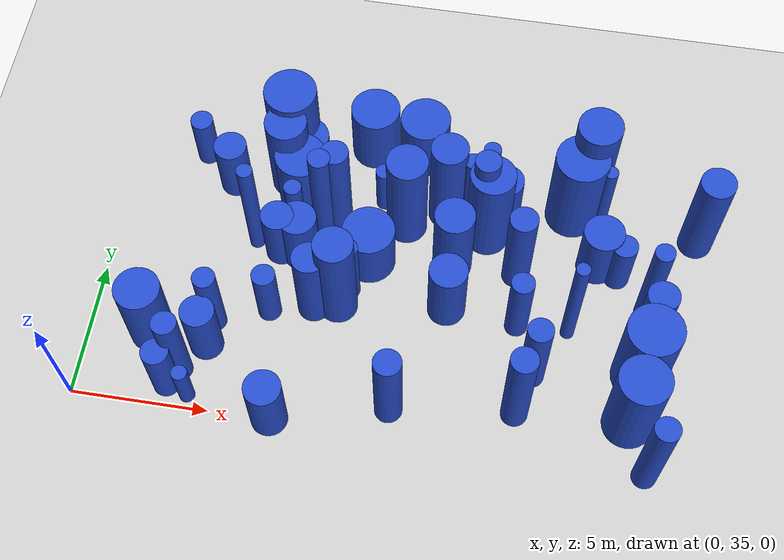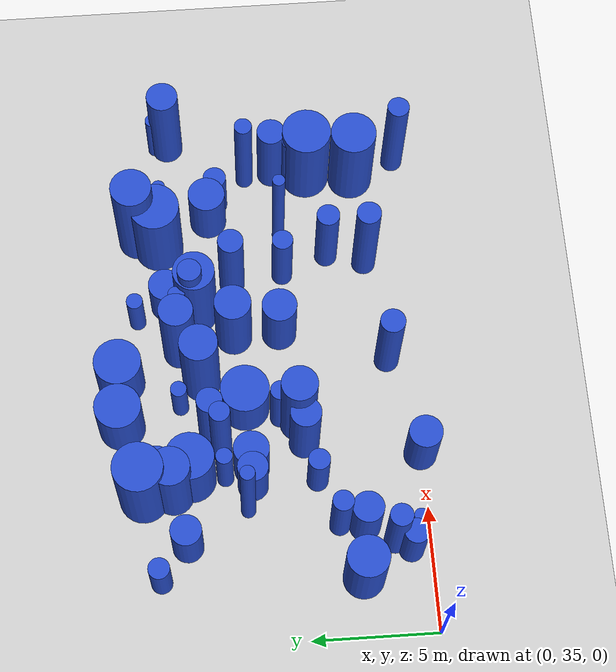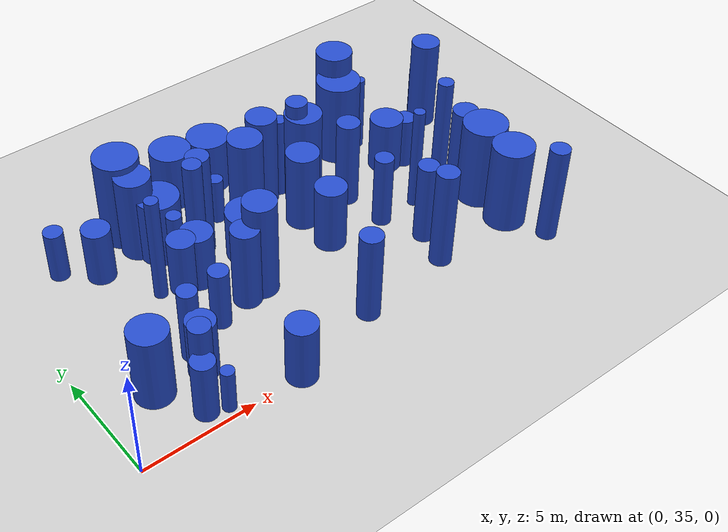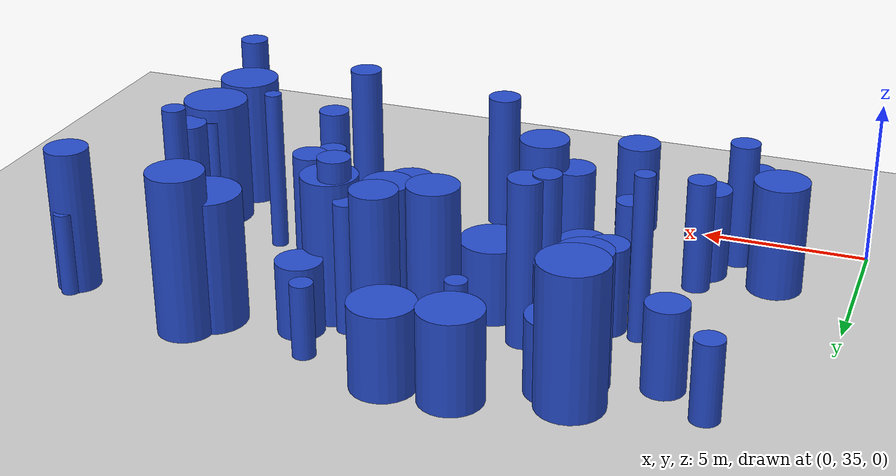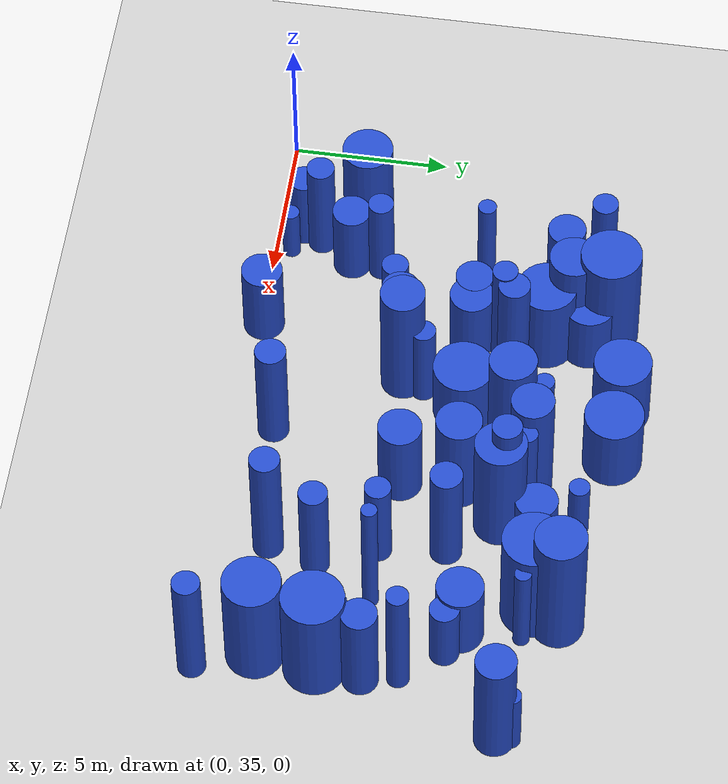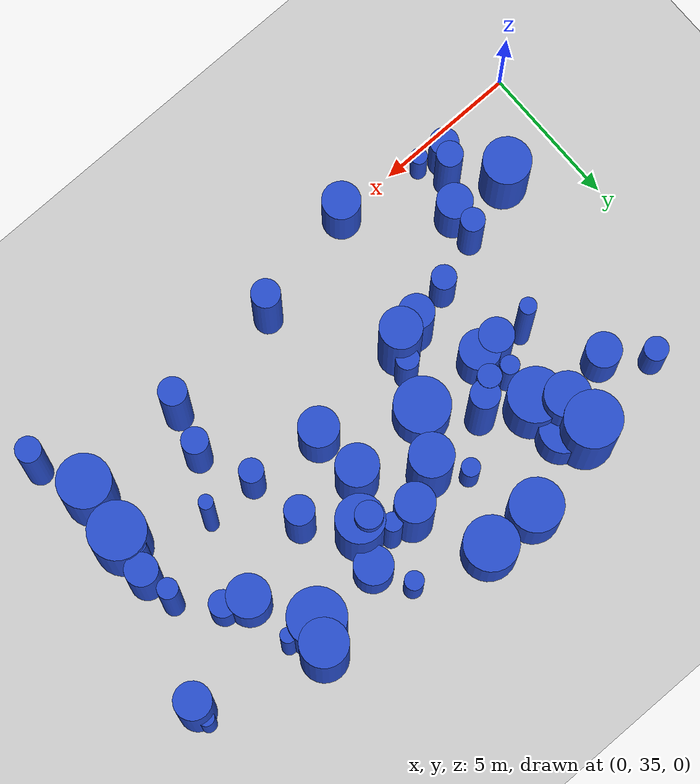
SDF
<sdf version="1.6">
 <world name="default">
  <model name="ground_plane">
   <static>1</static>
   <link name="link">
    <collision name="collision">
     <geometry><plane><normal>0 0 1</normal><size>100 100</size></plane></geometry>
     <surface><friction><ode><mu>100</mu><mu2>50</mu2></ode></friction></surface>
    </collision>
    <visual name="visual">
     <cast_shadows>0</cast_shadows>
     <geometry><plane><normal>0 0 1</normal><size>100 100</size></plane></geometry>
     <material>
      <script><uri>file://media/materials/scripts/gazebo.material</uri><name>Gazebo/Grey</name></script>
     </material>
    </visual>
   </link>
  </model>
  <model name="13">
   <static>0</static>
   <link name="link">
    <inertial>
     <mass>2</mass>
     <inertia><ixx>1.38583</ixx><ixy>0</ixy><ixz>0</ixz><iyy>1.38583</iyy><iyz>0</iyz><izz>0.558637</izz></inertia>
    </inertial>
    <collision name="collision">
     <geometry><cylinder><length>2.57664</length><radius>0.74742</radius></cylinder></geometry>
     <surface><contact><collide_without_contact>1</collide_without_contact></contact></surface>
    </collision>
    <visual name="visual">
     <geometry><cylinder><length>2.57664</length><radius>0.74742</radius></cylinder></geometry>
     <material>
      <script><uri>file://media/materials/scripts/gazebo.material</uri><name>Gazebo/Blue</name></script>
     </material>
    </visual>
    <gravity>0</gravity>
   </link>
   <pose>18.0491 42.9507 1.28832 0 -0 0</pose>
  </model>
  <model name="27">
   <static>0</static>
   <link name="link">
    <inertial>
     <mass>2</mass>
     <inertia><ixx>2.58788</ixx><ixy>0</ixy><ixz>0</ixz><iyy>2.58788</iyy><iyz>0</iyz><izz>0.212332</izz></inertia>
    </inertial>
    <collision name="collision">
     <geometry><cylinder><length>3.85879</length><radius>0.460795</radius></cylinder></geometry>
     <surface><contact><collide_without_contact>1</collide_without_contact></contact></surface>
    </collision>
    <visual name="visual">
     <geometry><cylinder><length>3.85879</length><radius>0.460795</radius></cylinder></geometry>
     <material>
      <script><uri>file://media/materials/scripts/gazebo.material</uri><name>Gazebo/Blue</name></script>
     </material>
    </visual>
    <gravity>0</gravity>
   </link>
   <pose>16.1431 38.1561 1.92939 0 -0 0</pose>
  </model>
  <model name="41">
   <static>0</static>
   <link name="link">
    <inertial>
     <mass>2</mass>
     <inertia><ixx>4.24794</ixx><ixy>0</ixy><ixz>0</ixz><iyy>4.24794</iyy><iyz>0</iyz><izz>0.162608</izz></inertia>
    </inertial>
    <collision name="collision">
     <geometry><cylinder><length>4.99998</length><radius>0.403246</radius></cylinder></geometry>
     <surface><contact><collide_without_contact>1</collide_without_contact></contact></surface>
    </collision>
    <visual name="visual">
     <geometry><cylinder><length>4.99998</length><radius>0.403246</radius></cylinder></geometry>
     <material>
      <script><uri>file://media/materials/scripts/gazebo.material</uri><name>Gazebo/Blue</name></script>
     </material>
    </visual>
    <gravity>0</gravity>
   </link>
   <pose>7.77155 42.938 2.49999 0 -0 0</pose>
  </model>
  <model name="42">
   <static>0</static>
   <link name="link">
    <inertial>
     <mass>2</mass>
     <inertia>
      <ixx>4.19788</ixx>
      <ixy>0</ixy>
      <ixz>0</ixz>
      <iyy>4.19788</iyy>
      <iyz>0</iyz>
      <izz>0.0844153</izz>
     </inertia>
    </inertial>
    <collision name="collision">
     <geometry><cylinder><length>4.9934</length><radius>0.290543</radius></cylinder></geometry>
     <surface><contact><collide_without_contact>1</collide_without_contact></contact></surface>
    </collision>
    <visual name="visual">
     <geometry><cylinder><length>4.9934</length><radius>0.290543</radius></cylinder></geometry>
     <material>
      <script><uri>file://media/materials/scripts/gazebo.material</uri><name>Gazebo/Blue</name></script>
     </material>
    </visual>
    <gravity>0</gravity>
   </link>
   <pose>5.32712 42.0448 2.4967 0 -0 0</pose>
  </model>
  <model name="56">
   <static>0</static>
   <link name="link">
    <inertial>
     <mass>2</mass>
     <inertia><ixx>1.56191</ixx><ixy>0</ixy><ixz>0</ixz><iyy>1.56191</iyy><iyz>0</iyz><izz>0.435046</izz></inertia>
    </inertial>
    <collision name="collision">
     <geometry><cylinder><length>2.84013</length><radius>0.65958</radius></cylinder></geometry>
     <surface><contact><collide_without_contact>1</collide_without_contact></contact></surface>
    </collision>
    <visual name="visual">
     <geometry><cylinder><length>2.84013</length><radius>0.65958</radius></cylinder></geometry>
     <material>
      <script><uri>file://media/materials/scripts/gazebo.material</uri><name>Gazebo/Blue</name></script>
     </material>
    </visual>
    <gravity>0</gravity>
   </link>
   <pose>7.21091 35.0864 1.42006 0 -0 0</pose>
  </model>
  <model name="59">
   <static>0</static>
   <link name="link">
    <inertial>
     <mass>2</mass>
     <inertia><ixx>1.77923</ixx><ixy>0</ixy><ixz>0</ixz><iyy>1.77923</iyy><iyz>0</iyz><izz>0.488407</izz></inertia>
    </inertial>
    <collision name="collision">
     <geometry><cylinder><length>3.03483</length><radius>0.698861</radius></cylinder></geometry>
     <surface><contact><collide_without_contact>1</collide_without_contact></contact></surface>
    </collision>
    <visual name="visual">
     <geometry><cylinder><length>3.03483</length><radius>0.698861</radius></cylinder></geometry>
     <material>
      <script><uri>file://media/materials/scripts/gazebo.material</uri><name>Gazebo/Blue</name></script>
     </material>
    </visual>
    <gravity>0</gravity>
   </link>
   <pose>12.759 40.3292 1.51741 0 -0 0</pose>
  </model>
  <model name="64">
   <static>0</static>
   <link name="link">
    <inertial>
     <mass>2</mass>
     <inertia><ixx>3.05222</ixx><ixy>0</ixy><ixz>0</ixz><iyy>3.05222</iyy><iyz>0</iyz><izz>0.246295</izz></inertia>
    </inertial>
    <collision name="collision">
     <geometry><cylinder><length>4.19219</length><radius>0.496281</radius></cylinder></geometry>
     <surface><contact><collide_without_contact>1</collide_without_contact></contact></surface>
    </collision>
    <visual name="visual">
     <geometry><cylinder><length>4.19219</length><radius>0.496281</radius></cylinder></geometry>
     <material>
      <script><uri>file://media/materials/scripts/gazebo.material</uri><name>Gazebo/Blue</name></script>
     </material>
    </visual>
    <gravity>0</gravity>
   </link>
   <pose>11.3018 36.0602 2.09609 0 -0 0</pose>
  </model>
  <model name="70">
   <static>0</static>
   <link name="link">
    <inertial>
     <mass>2</mass>
     <inertia>
      <ixx>4.12077</ixx>
      <ixy>0</ixy>
      <ixz>0</ixz>
      <iyy>4.12077</iyy>
      <iyz>0</iyz>
      <izz>0.0638492</izz>
     </inertia>
    </inertial>
    <collision name="collision">
     <geometry><cylinder><length>4.95309</length><radius>0.252684</radius></cylinder></geometry>
     <surface><contact><collide_without_contact>1</collide_without_contact></contact></surface>
    </collision>
    <visual name="visual">
     <geometry><cylinder><length>4.95309</length><radius>0.252684</radius></cylinder></geometry>
     <material>
      <script><uri>file://media/materials/scripts/gazebo.material</uri><name>Gazebo/Blue</name></script>
     </material>
    </visual>
    <gravity>0</gravity>
   </link>
   <pose>17.248 40.06 2.47654 0 -0 0</pose>
  </model>
  <model name="90">
   <static>0</static>
   <link name="link">
    <inertial>
     <mass>2</mass>
     <inertia><ixx>2.41035</ixx><ixy>0</ixy><ixz>0</ixz><iyy>2.41035</iyy><iyz>0</iyz><izz>0.324501</izz></inertia>
    </inertial>
    <collision name="collision">
     <geometry><cylinder><length>3.67268</length><radius>0.56965</radius></cylinder></geometry>
     <surface><contact><collide_without_contact>1</collide_without_contact></contact></surface>
    </collision>
    <visual name="visual">
     <geometry><cylinder><length>3.67268</length><radius>0.56965</radius></cylinder></geometry>
     <material>
      <script><uri>file://media/materials/scripts/gazebo.material</uri><name>Gazebo/Blue</name></script>
     </material>
    </visual>
    <gravity>0</gravity>
   </link>
   <pose>20.1419 40.1772 1.83634 0 -0 0</pose>
  </model>
  <model name="92">
   <static>0</static>
   <link name="link">
    <inertial>
     <mass>2</mass>
     <inertia><ixx>4.21808</ixx><ixy>0</ixy><ixz>0</ixz><iyy>4.21808</iyy><iyz>0</iyz><izz>0.253696</izz></inertia>
    </inertial>
    <collision name="collision">
     <geometry><cylinder><length>4.95453</length><radius>0.503682</radius></cylinder></geometry>
     <surface><contact><collide_without_contact>1</collide_without_contact></contact></surface>
    </collision>
    <visual name="visual">
     <geometry><cylinder><length>4.95453</length><radius>0.503682</radius></cylinder></geometry>
     <material>
      <script><uri>file://media/materials/scripts/gazebo.material</uri><name>Gazebo/Blue</name></script>
     </material>
    </visual>
    <gravity>0</gravity>
   </link>
   <pose>8.25943 43.2878 2.47727 0 -0 0</pose>
  </model>
  <model name="96">
   <static>0</static>
   <link name="link">
    <inertial>
     <mass>2</mass>
     <inertia><ixx>1.33841</ixx><ixy>0</ixy><ixz>0</ixz><iyy>1.33841</iyy><iyz>0</iyz><izz>0.366534</izz></inertia>
    </inertial>
    <collision name="collision">
     <geometry><cylinder><length>2.63265</length><radius>0.60542</radius></cylinder></geometry>
     <surface><contact><collide_without_contact>1</collide_without_contact></contact></surface>
    </collision>
    <visual name="visual">
     <geometry><cylinder><length>2.63265</length><radius>0.60542</radius></cylinder></geometry>
     <material>
      <script><uri>file://media/materials/scripts/gazebo.material</uri><name>Gazebo/Blue</name></script>
     </material>
    </visual>
    <gravity>0</gravity>
   </link>
   <pose>6.3203 41.7983 1.31632 0 -0 0</pose>
  </model>
  <model name="104">
   <static>0</static>
   <link name="link">
    <inertial>
     <mass>2</mass>
     <inertia>
      <ixx>0.866746</ixx>
      <ixy>0</ixy>
      <ixz>0</ixz>
      <iyy>0.866746</iyy>
      <iyz>0</iyz>
      <izz>0.105059</izz>
     </inertia>
    </inertial>
    <collision name="collision">
     <geometry><cylinder><length>2.21027</length><radius>0.324128</radius></cylinder></geometry>
     <surface><contact><collide_without_contact>1</collide_without_contact></contact></surface>
    </collision>
    <visual name="visual">
     <geometry><cylinder><length>2.21027</length><radius>0.324128</radius></cylinder></geometry>
     <material>
      <script><uri>file://media/materials/scripts/gazebo.material</uri><name>Gazebo/Blue</name></script>
     </material>
    </visual>
    <gravity>0</gravity>
   </link>
   <pose>9.80388 44.4915 1.10514 0 -0 0</pose>
  </model>
  <model name="105">
   <static>0</static>
   <link name="link">
    <inertial>
     <mass>2</mass>
     <inertia><ixx>2.06606</ixx><ixy>0</ixy><ixz>0</ixz><iyy>2.06606</iyy><iyz>0</iyz><izz>0.17566</izz></inertia>
    </inertial>
    <collision name="collision">
     <geometry><cylinder><length>3.4452</length><radius>0.419118</radius></cylinder></geometry>
     <surface><contact><collide_without_contact>1</collide_without_contact></contact></surface>
    </collision>
    <visual name="visual">
     <geometry><cylinder><length>3.4452</length><radius>0.419118</radius></cylinder></geometry>
     <material>
      <script><uri>file://media/materials/scripts/gazebo.material</uri><name>Gazebo/Blue</name></script>
     </material>
    </visual>
    <gravity>0</gravity>
   </link>
   <pose>15.3781 40.0314 1.7226 0 -0 0</pose>
  </model>
  <model name="125">
   <static>0</static>
   <link name="link">
    <inertial>
     <mass>2</mass>
     <inertia><ixx>3.64166</ixx><ixy>0</ixy><ixz>0</ixz><iyy>3.64166</iyy><iyz>0</iyz><izz>0.572656</izz></inertia>
    </inertial>
    <collision name="collision">
     <geometry><cylinder><length>4.48687</length><radius>0.756741</radius></cylinder></geometry>
     <surface><contact><collide_without_contact>1</collide_without_contact></contact></surface>
    </collision>
    <visual name="visual">
     <geometry><cylinder><length>4.48687</length><radius>0.756741</radius></cylinder></geometry>
     <material>
      <script><uri>file://media/materials/scripts/gazebo.material</uri><name>Gazebo/Blue</name></script>
     </material>
    </visual>
    <gravity>0</gravity>
   </link>
   <pose>10.7911 43.5918 2.24344 0 -0 0</pose>
  </model>
  <model name="130">
   <static>0</static>
   <link name="link">
    <inertial>
     <mass>2</mass>
     <inertia><ixx>3.12542</ixx><ixy>0</ixy><ixz>0</ixz><iyy>3.12542</iyy><iyz>0</iyz><izz>0.992962</izz></inertia>
    </inertial>
    <collision name="collision">
     <geometry><cylinder><length>3.9716</length><radius>0.996475</radius></cylinder></geometry>
     <surface><contact><collide_without_contact>1</collide_without_contact></contact></surface>
    </collision>
    <visual name="visual">
     <geometry><cylinder><length>3.9716</length><radius>0.996475</radius></cylinder></geometry>
     <material>
      <script><uri>file://media/materials/scripts/gazebo.material</uri><name>Gazebo/Blue</name></script>
     </material>
    </visual>
    <gravity>0</gravity>
   </link>
   <pose>16.9289 45.0492 1.9858 0 -0 0</pose>
  </model>
  <model name="138">
   <static>0</static>
   <link name="link">
    <inertial>
     <mass>2</mass>
     <inertia>
      <ixx>2.11905</ixx>
      <ixy>0</ixy>
      <ixz>0</ixz>
      <iyy>2.11905</iyy>
      <iyz>0</iyz>
      <izz>0.0820105</izz>
     </inertia>
    </inertial>
    <collision name="collision">
     <geometry><cylinder><length>3.53105</length><radius>0.286375</radius></cylinder></geometry>
     <surface><contact><collide_without_contact>1</collide_without_contact></contact></surface>
    </collision>
    <visual name="visual">
     <geometry><cylinder><length>3.53105</length><radius>0.286375</radius></cylinder></geometry>
     <material>
      <script><uri>file://media/materials/scripts/gazebo.material</uri><name>Gazebo/Blue</name></script>
     </material>
    </visual>
    <gravity>0</gravity>
   </link>
   <pose>19.6943 39.4602 1.76552 0 -0 0</pose>
  </model>
  <model name="149">
   <static>0</static>
   <link name="link">
    <inertial>
     <mass>2</mass>
     <inertia><ixx>3.48042</ixx><ixy>0</ixy><ixz>0</ixz><iyy>3.48042</iyy><iyz>0</iyz><izz>0.680354</izz></inertia>
    </inertial>
    <collision name="collision">
     <geometry><cylinder><length>4.34067</length><radius>0.824836</radius></cylinder></geometry>
     <surface><contact><collide_without_contact>1</collide_without_contact></contact></surface>
    </collision>
    <visual name="visual">
     <geometry><cylinder><length>4.34067</length><radius>0.824836</radius></cylinder></geometry>
     <material>
      <script><uri>file://media/materials/scripts/gazebo.material</uri><name>Gazebo/Blue</name></script>
     </material>
    </visual>
    <gravity>0</gravity>
   </link>
   <pose>13.8489 43.6199 2.17034 0 -0 0</pose>
  </model>
  <model name="153">
   <static>0</static>
   <link name="link">
    <inertial>
     <mass>2</mass>
     <inertia><ixx>1.40308</ixx><ixy>0</ixy><ixz>0</ixz><iyy>1.40308</iyy><iyz>0</iyz><izz>0.496893</izz></inertia>
    </inertial>
    <collision name="collision">
     <geometry><cylinder><length>2.63207</length><radius>0.704907</radius></cylinder></geometry>
     <surface><contact><collide_without_contact>1</collide_without_contact></contact></surface>
    </collision>
    <visual name="visual">
     <geometry><cylinder><length>2.63207</length><radius>0.704907</radius></cylinder></geometry>
     <material>
      <script><uri>file://media/materials/scripts/gazebo.material</uri><name>Gazebo/Blue</name></script>
     </material>
    </visual>
    <gravity>0</gravity>
   </link>
   <pose>7.04977 41.8099 1.31604 0 -0 0</pose>
  </model>
  <model name="160">
   <static>0</static>
   <link name="link">
    <inertial>
     <mass>2</mass>
     <inertia><ixx>1.12383</ixx><ixy>0</ixy><ixz>0</ixz><iyy>1.12383</iyy><iyz>0</iyz><izz>0.220587</izz></inertia>
    </inertial>
    <collision name="collision">
     <geometry><cylinder><length>2.46601</length><radius>0.469667</radius></cylinder></geometry>
     <surface><contact><collide_without_contact>1</collide_without_contact></contact></surface>
    </collision>
    <visual name="visual">
     <geometry><cylinder><length>2.46601</length><radius>0.469667</radius></cylinder></geometry>
     <material>
      <script><uri>file://media/materials/scripts/gazebo.material</uri><name>Gazebo/Blue</name></script>
     </material>
    </visual>
    <gravity>0</gravity>
   </link>
   <pose>18.8373 42.5814 1.233 0 -0 0</pose>
  </model>
  <model name="165">
   <static>0</static>
   <link name="link">
    <inertial>
     <mass>2</mass>
     <inertia><ixx>1.03255</ixx><ixy>0</ixy><ixz>0</ixz><iyy>1.03255</iyy><iyz>0</iyz><izz>0.176958</izz></inertia>
    </inertial>
    <collision name="collision">
     <geometry><cylinder><length>2.38001</length><radius>0.420664</radius></cylinder></geometry>
     <surface><contact><collide_without_contact>1</collide_without_contact></contact></surface>
    </collision>
    <visual name="visual">
     <geometry><cylinder><length>2.38001</length><radius>0.420664</radius></cylinder></geometry>
     <material>
      <script><uri>file://media/materials/scripts/gazebo.material</uri><name>Gazebo/Blue</name></script>
     </material>
    </visual>
    <gravity>0</gravity>
   </link>
   <pose>2.63785 45.5585 1.19 0 -0 0</pose>
  </model>
  <model name="175">
   <static>0</static>
   <link name="link">
    <inertial>
     <mass>2</mass>
     <inertia><ixx>3.81884</ixx><ixy>0</ixy><ixz>0</ixz><iyy>3.81884</iyy><iyz>0</iyz><izz>0.234939</izz></inertia>
    </inertial>
    <collision name="collision">
     <geometry><cylinder><length>4.71256</length><radius>0.484705</radius></cylinder></geometry>
     <surface><contact><collide_without_contact>1</collide_without_contact></contact></surface>
    </collision>
    <visual name="visual">
     <geometry><cylinder><length>4.71256</length><radius>0.484705</radius></cylinder></geometry>
     <material>
      <script><uri>file://media/materials/scripts/gazebo.material</uri><name>Gazebo/Blue</name></script>
     </material>
    </visual>
    <gravity>0</gravity>
   </link>
   <pose>15.7049 36.614 2.35628 0 -0 0</pose>
  </model>
  <model name="183">
   <static>0</static>
   <link name="link">
    <inertial>
     <mass>2</mass>
     <inertia>
      <ixx>2.21192</ixx>
      <ixy>0</ixy>
      <ixz>0</ixz>
      <iyy>2.21192</iyy>
      <iyz>0</iyz>
      <izz>0.0688999</izz>
     </inertia>
    </inertial>
    <collision name="collision">
     <geometry><cylinder><length>3.61453</length><radius>0.262488</radius></cylinder></geometry>
     <surface><contact><collide_without_contact>1</collide_without_contact></contact></surface>
    </collision>
    <visual name="visual">
     <geometry><cylinder><length>3.61453</length><radius>0.262488</radius></cylinder></geometry>
     <material>
      <script><uri>file://media/materials/scripts/gazebo.material</uri><name>Gazebo/Blue</name></script>
     </material>
    </visual>
    <gravity>0</gravity>
   </link>
   <pose>17.9871 44.8498 1.80726 0 -0 0</pose>
  </model>
  <model name="195">
   <static>0</static>
   <link name="link">
    <inertial>
     <mass>2</mass>
     <inertia><ixx>1.29107</ixx><ixy>0</ixy><ixz>0</ixz><iyy>1.29107</iyy><iyz>0</iyz><izz>0.375446</izz></inertia>
    </inertial>
    <collision name="collision">
     <geometry><cylinder><length>2.57295</length><radius>0.612736</radius></cylinder></geometry>
     <surface><contact><collide_without_contact>1</collide_without_contact></contact></surface>
    </collision>
    <visual name="visual">
     <geometry><cylinder><length>2.57295</length><radius>0.612736</radius></cylinder></geometry>
     <material>
      <script><uri>file://media/materials/scripts/gazebo.material</uri><name>Gazebo/Blue</name></script>
     </material>
    </visual>
    <gravity>0</gravity>
   </link>
   <pose>3.99616 44.4755 1.28648 0 -0 0</pose>
  </model>
  <model name="197">
   <static>0</static>
   <link name="link">
    <inertial>
     <mass>2</mass>
     <inertia><ixx>1.33691</ixx><ixy>0</ixy><ixz>0</ixz><iyy>1.33691</iyy><iyz>0</iyz><izz>0.943179</izz></inertia>
    </inertial>
    <collision name="collision">
     <geometry><cylinder><length>2.27858</length><radius>0.971174</radius></cylinder></geometry>
     <surface><contact><collide_without_contact>1</collide_without_contact></contact></surface>
    </collision>
    <visual name="visual">
     <geometry><cylinder><length>2.27858</length><radius>0.971174</radius></cylinder></geometry>
     <material>
      <script><uri>file://media/materials/scripts/gazebo.material</uri><name>Gazebo/Blue</name></script>
     </material>
    </visual>
    <gravity>0</gravity>
   </link>
   <pose>9.64033 41.9036 1.13929 0 -0 0</pose>
  </model>
  <model name="198">
   <static>0</static>
   <link name="link">
    <inertial>
     <mass>2</mass>
     <inertia><ixx>2.29288</ixx><ixy>0</ixy><ixz>0</ixz><iyy>2.29288</iyy><iyz>0</iyz><izz>0.669061</izz></inertia>
    </inertial>
    <collision name="collision">
     <geometry><cylinder><length>3.42784</length><radius>0.817961</radius></cylinder></geometry>
     <surface><contact><collide_without_contact>1</collide_without_contact></contact></surface>
    </collision>
    <visual name="visual">
     <geometry><cylinder><length>3.42784</length><radius>0.817961</radius></cylinder></geometry>
     <material>
      <script><uri>file://media/materials/scripts/gazebo.material</uri><name>Gazebo/Blue</name></script>
     </material>
    </visual>
    <gravity>0</gravity>
   </link>
   <pose>2.32109 37.7652 1.71392 0 -0 0</pose>
  </model>
  <model name="200">
   <static>0</static>
   <link name="link">
    <inertial>
     <mass>2</mass>
     <inertia><ixx>1.22683</ixx><ixy>0</ixy><ixz>0</ixz><iyy>1.22683</iyy><iyz>0</iyz><izz>0.70683</izz></inertia>
    </inertial>
    <collision name="collision">
     <geometry><cylinder><length>2.28921</length><radius>0.840732</radius></cylinder></geometry>
     <surface><contact><collide_without_contact>1</collide_without_contact></contact></surface>
    </collision>
    <visual name="visual">
     <geometry><cylinder><length>2.28921</length><radius>0.840732</radius></cylinder></geometry>
     <material>
      <script><uri>file://media/materials/scripts/gazebo.material</uri><name>Gazebo/Blue</name></script>
     </material>
    </visual>
    <gravity>0</gravity>
   </link>
   <pose>6.6681 45.536 1.14461 0 -0 0</pose>
  </model>
  <model name="201">
   <static>0</static>
   <link name="link">
    <inertial>
     <mass>2</mass>
     <inertia><ixx>1.42204</ixx><ixy>0</ixy><ixz>0</ixz><iyy>1.42204</iyy><iyz>0</iyz><izz>0.184462</izz></inertia>
    </inertial>
    <collision name="collision">
     <geometry><cylinder><length>2.82469</length><radius>0.429491</radius></cylinder></geometry>
     <surface><contact><collide_without_contact>1</collide_without_contact></contact></surface>
    </collision>
    <visual name="visual">
     <geometry><cylinder><length>2.82469</length><radius>0.429491</radius></cylinder></geometry>
     <material>
      <script><uri>file://media/materials/scripts/gazebo.material</uri><name>Gazebo/Blue</name></script>
     </material>
    </visual>
    <gravity>0</gravity>
   </link>
   <pose>6.37197 39.2482 1.41234 0 -0 0</pose>
  </model>
  <model name="217">
   <static>0</static>
   <link name="link">
    <inertial>
     <mass>2</mass>
     <inertia><ixx>3.55952</ixx><ixy>0</ixy><ixz>0</ixz><iyy>3.55952</iyy><iyz>0</iyz><izz>0.466842</izz></inertia>
    </inertial>
    <collision name="collision">
     <geometry><cylinder><length>4.46728</length><radius>0.683259</radius></cylinder></geometry>
     <surface><contact><collide_without_contact>1</collide_without_contact></contact></surface>
    </collision>
    <visual name="visual">
     <geometry><cylinder><length>4.46728</length><radius>0.683259</radius></cylinder></geometry>
     <material>
      <script><uri>file://media/materials/scripts/gazebo.material</uri><name>Gazebo/Blue</name></script>
     </material>
    </visual>
    <gravity>0</gravity>
   </link>
   <pose>12.1994 44.3913 2.23364 0 -0 0</pose>
  </model>
  <model name="225">
   <static>0</static>
   <link name="link">
    <inertial>
     <mass>2</mass>
     <inertia><ixx>1.49377</ixx><ixy>0</ixy><ixz>0</ixz><iyy>1.49377</iyy><iyz>0</iyz><izz>0.108361</izz></inertia>
    </inertial>
    <collision name="collision">
     <geometry><cylinder><length>2.93897</length><radius>0.329182</radius></cylinder></geometry>
     <surface><contact><collide_without_contact>1</collide_without_contact></contact></surface>
    </collision>
    <visual name="visual">
     <geometry><cylinder><length>2.93897</length><radius>0.329182</radius></cylinder></geometry>
     <material>
      <script><uri>file://media/materials/scripts/gazebo.material</uri><name>Gazebo/Blue</name></script>
     </material>
    </visual>
    <gravity>0</gravity>
   </link>
   <pose>6.70273 42.8679 1.46948 0 -0 0</pose>
  </model>
  <model name="229">
   <static>0</static>
   <link name="link">
    <inertial>
     <mass>2</mass>
     <inertia><ixx>2.52971</ixx><ixy>0</ixy><ixz>0</ixz><iyy>2.52971</iyy><iyz>0</iyz><izz>0.537861</izz></inertia>
    </inertial>
    <collision name="collision">
     <geometry><cylinder><length>3.68302</length><radius>0.73339</radius></cylinder></geometry>
     <surface><contact><collide_without_contact>1</collide_without_contact></contact></surface>
    </collision>
    <visual name="visual">
     <geometry><cylinder><length>3.68302</length><radius>0.73339</radius></cylinder></geometry>
     <material>
      <script><uri>file://media/materials/scripts/gazebo.material</uri><name>Gazebo/Blue</name></script>
     </material>
    </visual>
    <gravity>0</gravity>
   </link>
   <pose>12.711 42.177 1.84151 0 -0 0</pose>
  </model>
  <model name="248">
   <static>0</static>
   <link name="link">
    <inertial>
     <mass>2</mass>
     <inertia><ixx>1.80162</ixx><ixy>0</ixy><ixz>0</ixz><iyy>1.80162</iyy><iyz>0</iyz><izz>0.156119</izz></inertia>
    </inertial>
    <collision name="collision">
     <geometry><cylinder><length>3.2158</length><radius>0.395119</radius></cylinder></geometry>
     <surface><contact><collide_without_contact>1</collide_without_contact></contact></surface>
    </collision>
    <visual name="visual">
     <geometry><cylinder><length>3.2158</length><radius>0.395119</radius></cylinder></geometry>
     <material>
      <script><uri>file://media/materials/scripts/gazebo.material</uri><name>Gazebo/Blue</name></script>
     </material>
    </visual>
    <gravity>0</gravity>
   </link>
   <pose>9.11668 40.5474 1.6079 0 -0 0</pose>
  </model>
  <model name="261">
   <static>0</static>
   <link name="link">
    <inertial>
     <mass>2</mass>
     <inertia><ixx>3.46702</ixx><ixy>0</ixy><ixz>0</ixz><iyy>3.46702</iyy><iyz>0</iyz><izz>0.955568</izz></inertia>
    </inertial>
    <collision name="collision">
     <geometry><cylinder><length>4.23502</length><radius>0.977532</radius></cylinder></geometry>
     <surface><contact><collide_without_contact>1</collide_without_contact></contact></surface>
    </collision>
    <visual name="visual">
     <geometry><cylinder><length>4.23502</length><radius>0.977532</radius></cylinder></geometry>
     <material>
      <script><uri>file://media/materials/scripts/gazebo.material</uri><name>Gazebo/Blue</name></script>
     </material>
    </visual>
    <gravity>0</gravity>
   </link>
   <pose>6.0723 46.1027 2.11751 0 -0 0</pose>
  </model>
  <model name="268">
   <static>0</static>
   <link name="link">
    <inertial>
     <mass>2</mass>
     <inertia><ixx>2.02512</ixx><ixy>0</ixy><ixz>0</ixz><iyy>2.02512</iyy><iyz>0</iyz><izz>0.898971</izz></inertia>
    </inertial>
    <collision name="collision">
     <geometry><cylinder><length>3.07471</length><radius>0.948141</radius></cylinder></geometry>
     <surface><contact><collide_without_contact>1</collide_without_contact></contact></surface>
    </collision>
    <visual name="visual">
     <geometry><cylinder><length>3.07471</length><radius>0.948141</radius></cylinder></geometry>
     <material>
      <script><uri>file://media/materials/scripts/gazebo.material</uri><name>Gazebo/Blue</name></script>
     </material>
    </visual>
    <gravity>0</gravity>
   </link>
   <pose>6.7492 44.1751 1.53735 0 -0 0</pose>
  </model>
  <model name="272">
   <static>0</static>
   <link name="link">
    <inertial>
     <mass>2</mass>
     <inertia><ixx>2.61201</ixx><ixy>0</ixy><ixz>0</ixz><iyy>2.61201</iyy><iyz>0</iyz><izz>0.199286</izz></inertia>
    </inertial>
    <collision name="collision">
     <geometry><cylinder><length>3.88255</length><radius>0.446414</radius></cylinder></geometry>
     <surface><contact><collide_without_contact>1</collide_without_contact></contact></surface>
    </collision>
    <visual name="visual">
     <geometry><cylinder><length>3.88255</length><radius>0.446414</radius></cylinder></geometry>
     <material>
      <script><uri>file://media/materials/scripts/gazebo.material</uri><name>Gazebo/Blue</name></script>
     </material>
    </visual>
    <gravity>0</gravity>
   </link>
   <pose>3.67881 36.4392 1.94128 0 -0 0</pose>
  </model>
  <model name="273">
   <static>0</static>
   <link name="link">
    <inertial>
     <mass>2</mass>
     <inertia><ixx>3.02338</ixx><ixy>0</ixy><ixz>0</ixz><iyy>3.02338</iyy><iyz>0</iyz><izz>0.263045</izz></inertia>
    </inertial>
    <collision name="collision">
     <geometry><cylinder><length>4.16547</length><radius>0.512879</radius></cylinder></geometry>
     <surface><contact><collide_without_contact>1</collide_without_contact></contact></surface>
    </collision>
    <visual name="visual">
     <geometry><cylinder><length>4.16547</length><radius>0.512879</radius></cylinder></geometry>
     <material>
      <script><uri>file://media/materials/scripts/gazebo.material</uri><name>Gazebo/Blue</name></script>
     </material>
    </visual>
    <gravity>0</gravity>
   </link>
   <pose>15.1169 42.1133 2.08273 0 -0 0</pose>
  </model>
  <model name="301">
   <static>0</static>
   <link name="link">
    <inertial>
     <mass>2</mass>
     <inertia><ixx>3.06758</ixx><ixy>0</ixy><ixz>0</ixz><iyy>3.06758</iyy><iyz>0</iyz><izz>0.977596</izz></inertia>
    </inertial>
    <collision name="collision">
     <geometry><cylinder><length>3.93354</length><radius>0.988735</radius></cylinder></geometry>
     <surface><contact><collide_without_contact>1</collide_without_contact></contact></surface>
    </collision>
    <visual name="visual">
     <geometry><cylinder><length>3.93354</length><radius>0.988735</radius></cylinder></geometry>
     <material>
      <script><uri>file://media/materials/scripts/gazebo.material</uri><name>Gazebo/Blue</name></script>
     </material>
    </visual>
    <gravity>0</gravity>
   </link>
   <pose>19.9247 38.7405 1.96677 0 -0 0</pose>
  </model>
  <model name="305">
   <static>0</static>
   <link name="link">
    <inertial>
     <mass>2</mass>
     <inertia><ixx>3.37429</ixx><ixy>0</ixy><ixz>0</ixz><iyy>3.37429</iyy><iyz>0</iyz><izz>0.407416</izz></inertia>
    </inertial>
    <collision name="collision">
     <geometry><cylinder><length>4.36159</length><radius>0.638292</radius></cylinder></geometry>
     <surface><contact><collide_without_contact>1</collide_without_contact></contact></surface>
    </collision>
    <visual name="visual">
     <geometry><cylinder><length>4.36159</length><radius>0.638292</radius></cylinder></geometry>
     <material>
      <script><uri>file://media/materials/scripts/gazebo.material</uri><name>Gazebo/Blue</name></script>
     </material>
    </visual>
    <gravity>0</gravity>
   </link>
   <pose>21.6556 44.5088 2.1808 0 -0 0</pose>
  </model>
  <model name="315">
   <static>0</static>
   <link name="link">
    <inertial>
     <mass>2</mass>
     <inertia><ixx>3.59317</ixx><ixy>0</ixy><ixz>0</ixz><iyy>3.59317</iyy><iyz>0</iyz><izz>0.126983</izz></inertia>
    </inertial>
    <collision name="collision">
     <geometry><cylinder><length>4.60196</length><radius>0.356347</radius></cylinder></geometry>
     <surface><contact><collide_without_contact>1</collide_without_contact></contact></surface>
    </collision>
    <visual name="visual">
     <geometry><cylinder><length>4.60196</length><radius>0.356347</radius></cylinder></geometry>
     <material>
      <script><uri>file://media/materials/scripts/gazebo.material</uri><name>Gazebo/Blue</name></script>
     </material>
    </visual>
    <gravity>0</gravity>
   </link>
   <pose>19.9423 41.3138 2.30098 0 -0 0</pose>
  </model>
  <model name="338">
   <static>0</static>
   <link name="link">
    <inertial>
     <mass>2</mass>
     <inertia>
      <ixx>0.719601</ixx>
      <ixy>0</ixy>
      <ixz>0</ixz>
      <iyy>0.719601</iyy>
      <iyz>0</iyz>
      <izz>0.0800429</izz>
     </inertia>
    </inertial>
    <collision name="collision">
     <geometry><cylinder><length>2.01928</length><radius>0.282918</radius></cylinder></geometry>
     <surface><contact><collide_without_contact>1</collide_without_contact></contact></surface>
    </collision>
    <visual name="visual">
     <geometry><cylinder><length>2.01928</length><radius>0.282918</radius></cylinder></geometry>
     <material>
      <script><uri>file://media/materials/scripts/gazebo.material</uri><name>Gazebo/Blue</name></script>
     </material>
    </visual>
    <gravity>0</gravity>
   </link>
   <pose>4.13958 35.5016 1.00964 0 -0 0</pose>
  </model>
  <model name="352">
   <static>0</static>
   <link name="link">
    <inertial>
     <mass>2</mass>
     <inertia><ixx>3.65363</ixx><ixy>0</ixy><ixz>0</ixz><iyy>3.65363</iyy><iyz>0</iyz><izz>0.19464</izz></inertia>
    </inertial>
    <collision name="collision">
     <geometry><cylinder><length>4.61929</length><radius>0.44118</radius></cylinder></geometry>
     <surface><contact><collide_without_contact>1</collide_without_contact></contact></surface>
    </collision>
    <visual name="visual">
     <geometry><cylinder><length>4.61929</length><radius>0.44118</radius></cylinder></geometry>
     <material>
      <script><uri>file://media/materials/scripts/gazebo.material</uri><name>Gazebo/Blue</name></script>
     </material>
    </visual>
    <gravity>0</gravity>
   </link>
   <pose>20.3965 35.0056 2.30964 0 -0 0</pose>
  </model>
  <model name="353">
   <static>0</static>
   <link name="link">
    <inertial>
     <mass>2</mass>
     <inertia><ixx>2.90569</ixx><ixy>0</ixy><ixz>0</ixz><iyy>2.90569</iyy><iyz>0</iyz><izz>0.608785</izz></inertia>
    </inertial>
    <collision name="collision">
     <geometry><cylinder><length>3.95067</length><radius>0.780246</radius></cylinder></geometry>
     <surface><contact><collide_without_contact>1</collide_without_contact></contact></surface>
    </collision>
    <visual name="visual">
     <geometry><cylinder><length>3.95067</length><radius>0.780246</radius></cylinder></geometry>
     <material>
      <script><uri>file://media/materials/scripts/gazebo.material</uri><name>Gazebo/Blue</name></script>
     </material>
    </visual>
    <gravity>0</gravity>
   </link>
   <pose>6.11377 44.9261 1.97533 0 -0 0</pose>
  </model>
  <model name="358">
   <static>0</static>
   <link name="link">
    <inertial>
     <mass>2</mass>
     <inertia><ixx>1.50842</ixx><ixy>0</ixy><ixz>0</ixz><iyy>1.50842</iyy><iyz>0</iyz><izz>0.892496</izz></inertia>
    </inertial>
    <collision name="collision">
     <geometry><cylinder><length>2.52449</length><radius>0.94472</radius></cylinder></geometry>
     <surface><contact><collide_without_contact>1</collide_without_contact></contact></surface>
    </collision>
    <visual name="visual">
     <geometry><cylinder><length>2.52449</length><radius>0.94472</radius></cylinder></geometry>
     <material>
      <script><uri>file://media/materials/scripts/gazebo.material</uri><name>Gazebo/Blue</name></script>
     </material>
    </visual>
    <gravity>0</gravity>
   </link>
   <pose>10.9948 46.8269 1.26225 0 -0 0</pose>
  </model>
  <model name="368">
   <static>0</static>
   <link name="link">
    <inertial>
     <mass>2</mass>
     <inertia><ixx>2.07611</ixx><ixy>0</ixy><ixz>0</ixz><iyy>2.07611</iyy><iyz>0</iyz><izz>0.170026</izz></inertia>
    </inertial>
    <collision name="collision">
     <geometry><cylinder><length>3.45638</length><radius>0.412343</radius></cylinder></geometry>
     <surface><contact><collide_without_contact>1</collide_without_contact></contact></surface>
    </collision>
    <visual name="visual">
     <geometry><cylinder><length>3.45638</length><radius>0.412343</radius></cylinder></geometry>
     <material>
      <script><uri>file://media/materials/scripts/gazebo.material</uri><name>Gazebo/Blue</name></script>
     </material>
    </visual>
    <gravity>0</gravity>
   </link>
   <pose>4.49385 38.5184 1.72819 0 -0 0</pose>
  </model>
  <model name="385">
   <static>0</static>
   <link name="link">
    <inertial>
     <mass>2</mass>
     <inertia><ixx>1.47316</ixx><ixy>0</ixy><ixz>0</ixz><iyy>1.47316</iyy><iyz>0</iyz><izz>0.379872</izz></inertia>
    </inertial>
    <collision name="collision">
     <geometry><cylinder><length>2.77477</length><radius>0.616337</radius></cylinder></geometry>
     <surface><contact><collide_without_contact>1</collide_without_contact></contact></surface>
    </collision>
    <visual name="visual">
     <geometry><cylinder><length>2.77477</length><radius>0.616337</radius></cylinder></geometry>
     <material>
      <script><uri>file://media/materials/scripts/gazebo.material</uri><name>Gazebo/Blue</name></script>
     </material>
    </visual>
    <gravity>0</gravity>
   </link>
   <pose>4.39247 37.5445 1.38739 0 -0 0</pose>
  </model>
  <model name="397">
   <static>0</static>
   <link name="link">
    <inertial>
     <mass>2</mass>
     <inertia><ixx>1.43466</ixx><ixy>0</ixy><ixz>0</ixz><iyy>1.43466</iyy><iyz>0</iyz><izz>0.241559</izz></inertia>
    </inertial>
    <collision name="collision">
     <geometry><cylinder><length>2.80772</length><radius>0.491487</radius></cylinder></geometry>
     <surface><contact><collide_without_contact>1</collide_without_contact></contact></surface>
    </collision>
    <visual name="visual">
     <geometry><cylinder><length>2.80772</length><radius>0.491487</radius></cylinder></geometry>
     <material>
      <script><uri>file://media/materials/scripts/gazebo.material</uri><name>Gazebo/Blue</name></script>
     </material>
    </visual>
    <gravity>0</gravity>
   </link>
   <pose>3.33449 35.8168 1.40386 0 -0 0</pose>
  </model>
  <model name="408">
   <static>0</static>
   <link name="link">
    <inertial>
     <mass>2</mass>
     <inertia><ixx>4.26641</ixx><ixy>0</ixy><ixz>0</ixz><iyy>4.26641</iyy><iyz>0</iyz><izz>0.671896</izz></inertia>
    </inertial>
    <collision name="collision">
     <geometry><cylinder><length>4.85621</length><radius>0.819693</radius></cylinder></geometry>
     <surface><contact><collide_without_contact>1</collide_without_contact></contact></surface>
    </collision>
    <visual name="visual">
     <geometry><cylinder><length>4.85621</length><radius>0.819693</radius></cylinder></geometry>
     <material>
      <script><uri>file://media/materials/scripts/gazebo.material</uri><name>Gazebo/Blue</name></script>
     </material>
    </visual>
    <gravity>0</gravity>
   </link>
   <pose>17.3563 45.8947 2.4281 0 -0 0</pose>
  </model>
  <model name="417">
   <static>0</static>
   <link name="link">
    <inertial>
     <mass>2</mass>
     <inertia><ixx>4.20319</ixx><ixy>0</ixy><ixz>0</ixz><iyy>4.20319</iyy><iyz>0</iyz><izz>0.223096</izz></inertia>
    </inertial>
    <collision name="collision">
     <geometry><cylinder><length>4.95478</length><radius>0.47233</radius></cylinder></geometry>
     <surface><contact><collide_without_contact>1</collide_without_contact></contact></surface>
    </collision>
    <visual name="visual">
     <geometry><cylinder><length>4.95478</length><radius>0.47233</radius></cylinder></geometry>
     <material>
      <script><uri>file://media/materials/scripts/gazebo.material</uri><name>Gazebo/Blue</name></script>
     </material>
    </visual>
    <gravity>0</gravity>
   </link>
   <pose>13.6166 43.773 2.47739 0 -0 0</pose>
  </model>
  <model name="420">
   <static>0</static>
   <link name="link">
    <inertial>
     <mass>2</mass>
     <inertia><ixx>1.64346</ixx><ixy>0</ixy><ixz>0</ixz><iyy>1.64346</iyy><iyz>0</iyz><izz>0.85094</izz></inertia>
    </inertial>
    <collision name="collision">
     <geometry><cylinder><length>2.70332</length><radius>0.922464</radius></cylinder></geometry>
     <surface><contact><collide_without_contact>1</collide_without_contact></contact></surface>
    </collision>
    <visual name="visual">
     <geometry><cylinder><length>2.70332</length><radius>0.922464</radius></cylinder></geometry>
     <material>
      <script><uri>file://media/materials/scripts/gazebo.material</uri><name>Gazebo/Blue</name></script>
     </material>
    </visual>
    <gravity>0</gravity>
   </link>
   <pose>9.08045 46.8675 1.35166 0 -0 0</pose>
  </model>
  <model name="453">
   <static>0</static>
   <link name="link">
    <inertial>
     <mass>2</mass>
     <inertia><ixx>2.58867</ixx><ixy>0</ixy><ixz>0</ixz><iyy>2.58867</iyy><iyz>0</iyz><izz>0.367255</izz></inertia>
    </inertial>
    <collision name="collision">
     <geometry><cylinder><length>3.79872</length><radius>0.606015</radius></cylinder></geometry>
     <surface><contact><collide_without_contact>1</collide_without_contact></contact></surface>
    </collision>
    <visual name="visual">
     <geometry><cylinder><length>3.79872</length><radius>0.606015</radius></cylinder></geometry>
     <material>
      <script><uri>file://media/materials/scripts/gazebo.material</uri><name>Gazebo/Blue</name></script>
     </material>
    </visual>
    <gravity>0</gravity>
   </link>
   <pose>7.95895 39.6609 1.89936 0 -0 0</pose>
  </model>
  <model name="468">
   <static>0</static>
   <link name="link">
    <inertial>
     <mass>2</mass>
     <inertia><ixx>1.02788</ixx><ixy>0</ixy><ixz>0</ixz><iyy>1.02788</iyy><iyz>0</iyz><izz>0.45679</izz></inertia>
    </inertial>
    <collision name="collision">
     <geometry><cylinder><length>2.19018</length><radius>0.675863</radius></cylinder></geometry>
     <surface><contact><collide_without_contact>1</collide_without_contact></contact></surface>
    </collision>
    <visual name="visual">
     <geometry><cylinder><length>2.19018</length><radius>0.675863</radius></cylinder></geometry>
     <material>
      <script><uri>file://media/materials/scripts/gazebo.material</uri><name>Gazebo/Blue</name></script>
     </material>
    </visual>
    <gravity>0</gravity>
   </link>
   <pose>14.3086 44.8202 1.09509 0 -0 0</pose>
  </model>
  <model name="473">
   <static>0</static>
   <link name="link">
    <inertial>
     <mass>2</mass>
     <inertia><ixx>3.10819</ixx><ixy>0</ixy><ixz>0</ixz><iyy>3.10819</iyy><iyz>0</iyz><izz>0.840155</izz></inertia>
    </inertial>
    <collision name="collision">
     <geometry><cylinder><length>4.01605</length><radius>0.916599</radius></cylinder></geometry>
     <surface><contact><collide_without_contact>1</collide_without_contact></contact></surface>
    </collision>
    <visual name="visual">
     <geometry><cylinder><length>4.01605</length><radius>0.916599</radius></cylinder></geometry>
     <material>
      <script><uri>file://media/materials/scripts/gazebo.material</uri><name>Gazebo/Blue</name></script>
     </material>
    </visual>
    <gravity>0</gravity>
   </link>
   <pose>19.6888 36.8482 2.00803 0 -0 0</pose>
  </model>
  <model name="484">
   <static>0</static>
   <link name="link">
    <inertial>
     <mass>2</mass>
     <inertia>
      <ixx>1.11409</ixx>
      <ixy>0</ixy>
      <ixz>0</ixz>
      <iyy>1.11409</iyy>
      <iyz>0</iyz>
      <izz>0.0816194</izz>
     </inertia>
    </inertial>
    <collision name="collision">
     <geometry><cylinder><length>2.53766</length><radius>0.285691</radius></cylinder></geometry>
     <surface><contact><collide_without_contact>1</collide_without_contact></contact></surface>
    </collision>
    <visual name="visual">
     <geometry><cylinder><length>2.53766</length><radius>0.285691</radius></cylinder></geometry>
     <material>
      <script><uri>file://media/materials/scripts/gazebo.material</uri><name>Gazebo/Blue</name></script>
     </material>
    </visual>
    <gravity>0</gravity>
   </link>
   <pose>21.6376 45.0236 1.26883 0 -0 0</pose>
  </model>
  <model name="486">
   <static>0</static>
   <link name="link">
    <inertial>
     <mass>2</mass>
     <inertia><ixx>3.84337</ixx><ixy>0</ixy><ixz>0</ixz><iyy>3.84337</iyy><iyz>0</iyz><izz>0.511288</izz></inertia>
    </inertial>
    <collision name="collision">
     <geometry><cylinder><length>4.63965</length><radius>0.715044</radius></cylinder></geometry>
     <surface><contact><collide_without_contact>1</collide_without_contact></contact></surface>
    </collision>
    <visual name="visual">
     <geometry><cylinder><length>4.63965</length><radius>0.715044</radius></cylinder></geometry>
     <material>
      <script><uri>file://media/materials/scripts/gazebo.material</uri><name>Gazebo/Blue</name></script>
     </material>
    </visual>
    <gravity>0</gravity>
   </link>
   <pose>8.81884 39.8526 2.31983 0 -0 0</pose>
  </model>
  <model name="491">
   <static>0</static>
   <link name="link">
    <inertial>
     <mass>2</mass>
     <inertia>
      <ixx>0.878394</ixx>
      <ixy>0</ixy>
      <ixz>0</ixz>
      <iyy>0.878394</iyy>
      <iyz>0</iyz>
      <izz>0.110769</izz>
     </inertia>
    </inertial>
    <collision name="collision">
     <geometry><cylinder><length>2.22217</length><radius>0.33282</radius></cylinder></geometry>
     <surface><contact><collide_without_contact>1</collide_without_contact></contact></surface>
    </collision>
    <visual name="visual">
     <geometry><cylinder><length>2.22217</length><radius>0.33282</radius></cylinder></geometry>
     <material>
      <script><uri>file://media/materials/scripts/gazebo.material</uri><name>Gazebo/Blue</name></script>
     </material>
    </visual>
    <gravity>0</gravity>
   </link>
   <pose>13.6507 46.069 1.11109 0 -0 0</pose>
  </model>
  <model name="497">
   <static>0</static>
   <link name="link">
    <inertial>
     <mass>2</mass>
     <inertia><ixx>2.63746</ixx><ixy>0</ixy><ixz>0</ixz><iyy>2.63746</iyy><iyz>0</iyz><izz>0.109951</izz></inertia>
    </inertial>
    <collision name="collision">
     <geometry><cylinder><length>3.93636</length><radius>0.331589</radius></cylinder></geometry>
     <surface><contact><collide_without_contact>1</collide_without_contact></contact></surface>
    </collision>
    <visual name="visual">
     <geometry><cylinder><length>3.93636</length><radius>0.331589</radius></cylinder></geometry>
     <material>
      <script><uri>file://media/materials/scripts/gazebo.material</uri><name>Gazebo/Blue</name></script>
     </material>
    </visual>
    <gravity>0</gravity>
   </link>
   <pose>13.0831 44.3421 1.96818 0 -0 0</pose>
  </model>
 </world>
</sdf>
